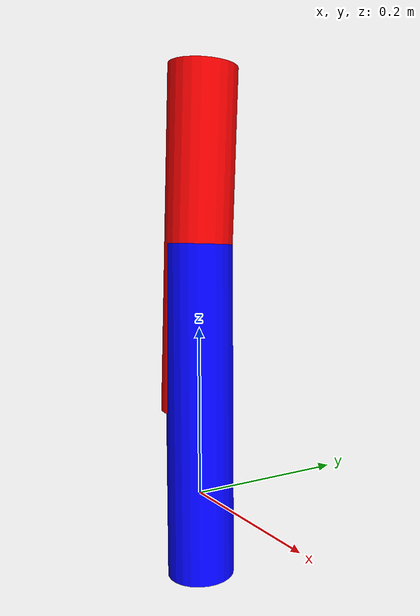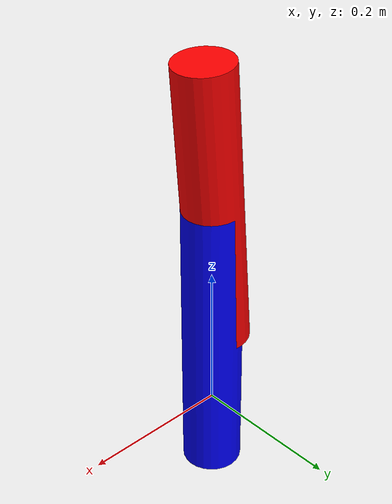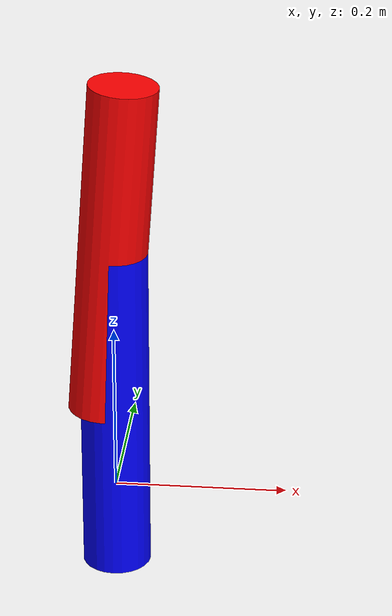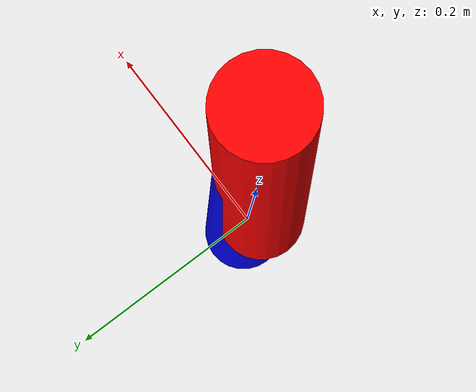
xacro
<?xml version="1.0"?>
<robot xmlns:xacro="http://www.ros.org/wiki/xacro" name="pan_tilt">
    <xacro:property name="base_link_length" value="0.01" />
    <xacro:property name="base_link_radius" value="0.01" />
    <xacro:property name="pan_link_length" value="0.4" />
    <xacro:property name="pan_link_radius" value="0.04" />
    <xacro:macro name="inertial_matrix" params="mass">
        <inertial>
            <mass value="${mass}"/>
            <inertia ixx="0.0" ixy="0.0" ixz="0.0" iyy="0.0" iyz="0.0" izz="0.0"/>
        </inertial>
    </xacro:macro>

    <link name="base_link">
        <visual>
            <geometry>
                <cylinder radius="${base_link_radius+0.02}" length="${base_link_length}"/>
            </geometry>
            <origin rpy="0 0 0" xyz="0 0 0"/>
            <material name="yellow">
                <color rgba="1 1 0 1"/>
            </material>
        </visual>
        <xacro:inertial_matrix mass="1"/>
    </link>
    <joint name="pan_joint" type="revolute">
        <parent link="base_link"/>
        <child link="pan_link"/>
        <origin xyz="0 0 0.1" rpy="0 0 0"/>
        <axis xyz="0 0 1"/>
        <limit effort="300" velocity="0.1" lower="-3.14" upper="3.14"/>
        <dynamics damping="50" friction="1"/>
    </joint>
    <link name="pan_link">
        <visual>
            <geometry>
                <cylinder radius="0.04" length="0.4"/>
            </geometry>
            <material name="red">
                <color rgba="0 0 1.0 1.0"/>
            </material>
        </visual>
        <collision>
            <geometry>
                <mesh filename="package://pkg_name/meshes/file_name"/>
                <box size="1.0 1.0 1.0" />
                <cylinder radius="1.0" length="1.0"/>
            </geometry>
        </collision>
        <xacro:inertial_matrix mass="1"/>
    </link>
    <joint name="tilt_joint" type="revolute">
        <parent link="pan_link"/>
        <child link="tilt_link"/>
        <origin xyz="0 0 0.2" rpy="0 0 0"/>
        <axis xyz="0 1 0"/>
        <limit effort="300" velocity="0.1" lower="-4.64" upper="-1.5"/>
        <dynamics damping="50" friction="1"/>
    </joint>
    <link name="tilt_link">
        <visual>
            <geometry>
                <cylinder radius="0.04" length="0.4"/>
            </geometry>
            <material name="green">
                <color rgba="1 0 0 1"/>
            </material>
        </visual>
        <xacro:inertial_matrix mass="1"/>
    </link>
</robot>
